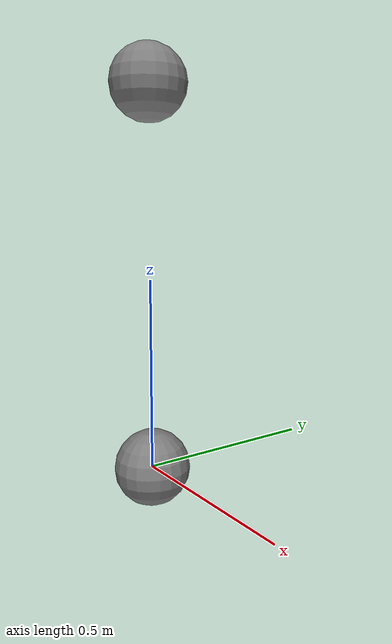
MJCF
<mujoco model="tendon_sleep">
            <option timestep="0.001" integrator="implicitspringdamper" gravity="0 0 0">
                <flag sleep="enable"/>
            </option>
            <worldbody>
                <body name="b1" pos="0 0 1">
                    <joint name="j0" type="hinge" axis="0 1 0"
                           stiffness="0" damping="0"/>
                    <geom type="sphere" size="0.1" mass="1.0"/>
                    <body name="b2" pos="0 0 -1">
                        <joint name="j1" type="hinge" axis="0 1 0"
                               stiffness="0" damping="0"/>
                        <geom type="sphere" size="0.1" mass="1.0"/>
                    </body>
                </body>
            </worldbody>
            <tendon>
                <fixed name="t0" stiffness="100.0" damping="10.0"
                       springlength="0 0">
                    <joint joint="j0" coef="1.0"/>
                    <joint joint="j1" coef="-1.0"/>
                </fixed>
            </tendon>
        </mujoco>
